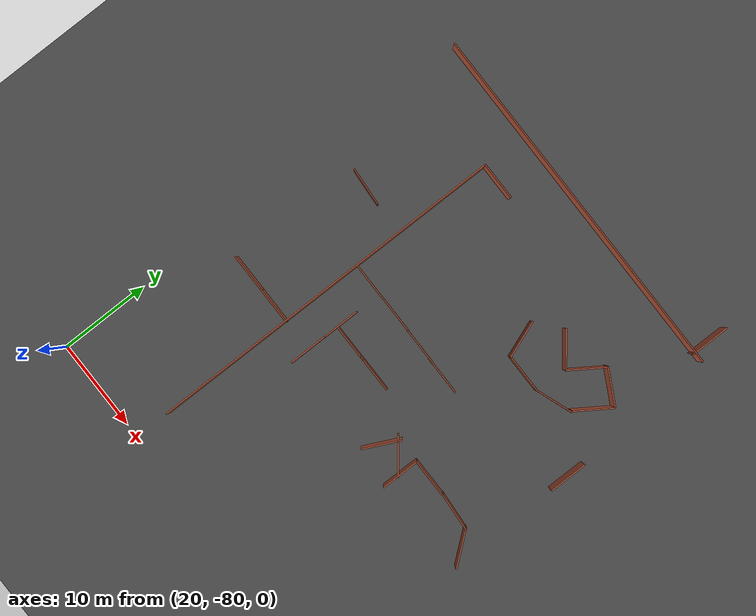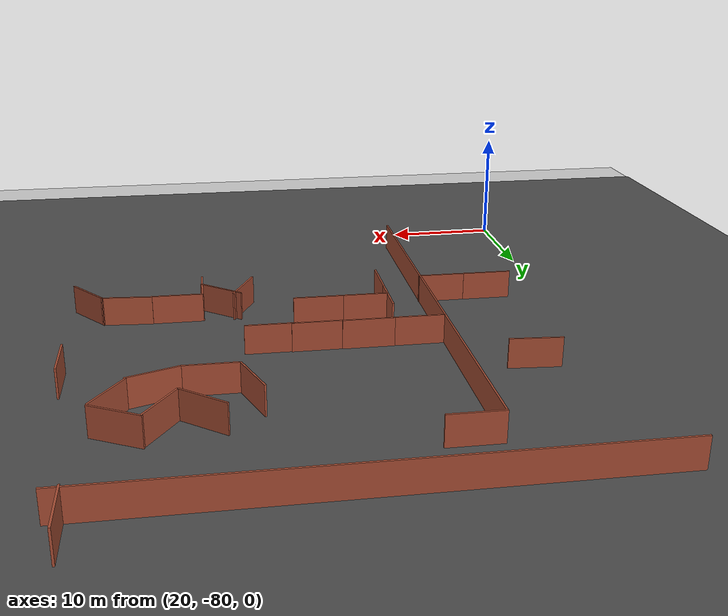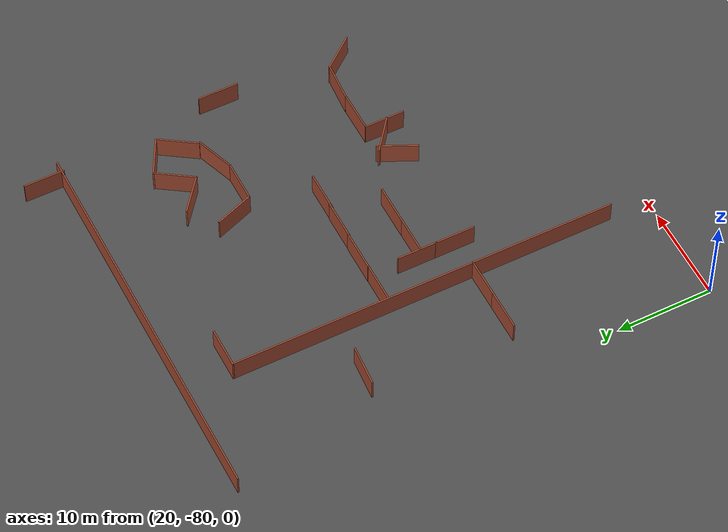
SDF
<sdf version="1.6">
 <world name="default">
  <model name="ground_plane">
   <static>1</static>
   <link name="link">
    <collision name="collision">
     <geometry><plane><normal>0 0 1</normal><size>200 200</size></plane></geometry>
     <surface><friction><ode><mu>100</mu><mu2>50</mu2></ode></friction></surface>
    </collision>
    <visual name="visual">
     <cast_shadows>0</cast_shadows>
     <geometry><plane><normal>0 0 1</normal><size>200 200</size></plane></geometry>
     <material>
      <script><uri>file://media/materials/scripts/gazebo.material</uri><name>Gazebo/Grey</name></script>
     </material>
    </visual>
   </link>
  </model>
  <model name="asphalt_plane">
   <static>1</static>
   <link name="link">
    <collision name="collision"><geometry><box><size>200 200 0.1</size></box></geometry></collision>
    <visual name="visual">
     <cast_shadows>0</cast_shadows>
     <geometry><box><size>200 200 0.1</size></box></geometry>
     <material>
      <script>
       <uri>model://asphalt_plane/materials/scripts</uri>
       <uri>model://asphalt_plane/materials/textures</uri>
       <name>vrc/asphalt</name>
      </script>
     </material>
    </visual>
   </link>
  </model>
  <model name="brick_longwall_clone">
   <pose>40.5339 -30.0862 0 0 -0 0</pose>
   <link name="Wall_0">
    <collision name="Wall_0_Collision">
     <geometry><box><size>40.5 0.15 2.5</size></box></geometry>
     <pose>0 0 1.25 0 -0 0</pose>
    </collision>
    <visual name="Wall_0_Visual">
     <pose>0 0 1.25 0 -0 0</pose>
     <geometry><box><size>40.5 0.15 2.5</size></box></geometry>
     <material>
      <script><uri>file://media/materials/scripts/gazebo.material</uri><name>Gazebo/Bricks</name></script>
      <ambient>1 1 1 1</ambient>
     </material>
    </visual>
    <pose>1e-06 0 0 0 -0 0</pose>
   </link>
   <static>1</static>
  </model>
  <model name="brick_worlds_2">
   <pose>57.0992 -38.867 0 0 -0 1.08023</pose>
   <link name="Wall_0">
    <collision name="Wall_0_Collision">
     <geometry><box><size>4.25 0.15 2.5</size></box></geometry>
     <pose>0 0 1.25 0 -0 0</pose>
    </collision>
    <visual name="Wall_0_Visual">
     <pose>0 0 1.25 0 -0 0</pose>
     <geometry><box><size>4.25 0.15 2.5</size></box></geometry>
     <material>
      <script><uri>file://media/materials/scripts/gazebo.material</uri><name>Gazebo/Bricks</name></script>
      <ambient>1 1 1 1</ambient>
     </material>
    </visual>
    <pose>0 -0 0 0 -0 1.5708</pose>
   </link>
   <static>1</static>
  </model>
  <model name="brick_worlds_0_clone">
   <pose>57.3372 -59.0075 0 0 -0 1.49697</pose>
   <link name="Wall_0">
    <collision name="Wall_0_Collision">
     <geometry><box><size>4.25 0.15 2.5</size></box></geometry>
     <pose>0 0 1.25 0 -0 0</pose>
    </collision>
    <visual name="Wall_0_Visual">
     <pose>0 0 1.25 0 -0 0</pose>
     <geometry><box><size>4.25 0.15 2.5</size></box></geometry>
     <material>
      <script><uri>file://media/materials/scripts/gazebo.material</uri><name>Gazebo/Bricks</name></script>
      <ambient>1 1 1 1</ambient>
     </material>
    </visual>
    <pose>0 -0 0 0 -0 1.5708</pose>
   </link>
   <static>1</static>
  </model>
  <model name="brick_worlds_2_clone">
   <pose>60.6055 -60.7291 0 0 -0 0.67691</pose>
   <link name="Wall_0">
    <collision name="Wall_0_Collision">
     <geometry><box><size>4.25 0.15 2.5</size></box></geometry>
     <pose>0 0 1.25 0 -0 0</pose>
    </collision>
    <visual name="Wall_0_Visual">
     <pose>0 0 1.25 0 -0 0</pose>
     <geometry><box><size>4.25 0.15 2.5</size></box></geometry>
     <material>
      <script><uri>file://media/materials/scripts/gazebo.material</uri><name>Gazebo/Bricks</name></script>
      <ambient>1 1 1 1</ambient>
     </material>
    </visual>
    <pose>0 -0 0 0 -0 1.5708</pose>
   </link>
   <static>1</static>
  </model>
  <model name="brick_worlds_1_clone_0">
   <pose>61.6134 -47.8914 0 0 -0 0</pose>
   <link name="Wall_0">
    <collision name="Wall_0_Collision">
     <geometry><box><size>4.25 0.15 2.5</size></box></geometry>
     <pose>0 0 1.25 0 -0 0</pose>
    </collision>
    <visual name="Wall_0_Visual">
     <pose>0 0 1.25 0 -0 0</pose>
     <geometry><box><size>4.25 0.15 2.5</size></box></geometry>
     <material>
      <script><uri>file://media/materials/scripts/gazebo.material</uri><name>Gazebo/Bricks</name></script>
      <ambient>1 1 1 1</ambient>
     </material>
    </visual>
    <pose>0 -0 0 0 -0 1.5708</pose>
   </link>
   <static>1</static>
  </model>
  <model name="brick_worlds_1_clone_0_clone_clone_0_clone_clone_0">
   <pose>53.1055 -58.8873 0 0 0 -1.57092</pose>
   <link name="Wall_0">
    <collision name="Wall_0_Collision">
     <geometry><box><size>4.25 0.15 2.5</size></box></geometry>
     <pose>0 0 1.25 0 -0 0</pose>
    </collision>
    <visual name="Wall_0_Visual">
     <pose>0 0 1.25 0 -0 0</pose>
     <geometry><box><size>4.25 0.15 2.5</size></box></geometry>
     <material>
      <script><uri>file://media/materials/scripts/gazebo.material</uri><name>Gazebo/Bricks</name></script>
      <ambient>1 1 1 1</ambient>
     </material>
    </visual>
    <pose>0 -0 0 0 -0 1.5708</pose>
   </link>
   <static>1</static>
  </model>
  <model name="brick_worlds_1_clone_1_clone_7_clone_clone">
   <pose>54.1633 -39.674 0 0 0 -0.589381</pose>
   <link name="Wall_0">
    <collision name="Wall_0_Collision">
     <geometry><box><size>4.25 0.15 2.5</size></box></geometry>
     <pose>0 0 1.25 0 -0 0</pose>
    </collision>
    <visual name="Wall_0_Visual">
     <pose>0 0 1.25 0 -0 0</pose>
     <geometry><box><size>4.25 0.15 2.5</size></box></geometry>
     <material>
      <script><uri>file://media/materials/scripts/gazebo.material</uri><name>Gazebo/Bricks</name></script>
      <ambient>1 1 1 1</ambient>
     </material>
    </visual>
    <pose>0 -0 0 0 -0 1.5708</pose>
   </link>
   <static>1</static>
  </model>
  <model name="brick_worlds_1_clone_1_clone_7_clone_clone_clone">
   <pose>57.7678 -41.7145 0 0 0 -0.589381</pose>
   <link name="Wall_0">
    <collision name="Wall_0_Collision">
     <geometry><box><size>4.25 0.15 2.5</size></box></geometry>
     <pose>0 0 1.25 0 -0 0</pose>
    </collision>
    <visual name="Wall_0_Visual">
     <pose>0 0 1.25 0 -0 0</pose>
     <geometry><box><size>4.25 0.15 2.5</size></box></geometry>
     <material>
      <script><uri>file://media/materials/scripts/gazebo.material</uri><name>Gazebo/Bricks</name></script>
      <ambient>1 1 1 1</ambient>
     </material>
    </visual>
    <pose>0 -0 0 0 -0 1.5708</pose>
   </link>
   <static>1</static>
  </model>
  <model name="brick_worlds_1_clone_0_clone_clone_0_clone_clone_0_clone_clone">
   <pose>47.8022 -43.0147 0 0 0 -2.78777</pose>
   <link name="Wall_0">
    <collision name="Wall_0_Collision">
     <geometry><box><size>4.25 0.15 2.5</size></box></geometry>
     <pose>0 0 1.25 0 -0 0</pose>
    </collision>
    <visual name="Wall_0_Visual">
     <pose>0 0 1.25 0 -0 0</pose>
     <geometry><box><size>4.25 0.15 2.5</size></box></geometry>
     <material>
      <script><uri>file://media/materials/scripts/gazebo.material</uri><name>Gazebo/Bricks</name></script>
      <ambient>1 1 1 1</ambient>
     </material>
    </visual>
    <pose>0 -0 0 0 -0 1.5708</pose>
   </link>
   <static>1</static>
  </model>
  <model name="brick_worlds_1_clone_0_clone_clone_0_clone_clone_0_clone_clone_0">
   <pose>54.7413 -44.255 0 0 0 -1.22347</pose>
   <link name="Wall_0">
    <collision name="Wall_0_Collision">
     <geometry><box><size>4.25 0.15 2.5</size></box></geometry>
     <pose>0 0 1.25 0 -0 0</pose>
    </collision>
    <visual name="Wall_0_Visual">
     <pose>0 0 1.25 0 -0 0</pose>
     <geometry><box><size>4.25 0.15 2.5</size></box></geometry>
     <material>
      <script><uri>file://media/materials/scripts/gazebo.material</uri><name>Gazebo/Bricks</name></script>
      <ambient>1 1 1 1</ambient>
     </material>
    </visual>
    <pose>0 -0 0 0 -0 1.5708</pose>
   </link>
   <static>1</static>
  </model>
  <model name="brick_worlds_1_clone_0_clone_clone_0_clone_clone_0_clone_clone_clone">
   <pose>50.6997 -44.9664 0 0 0 -1.57092</pose>
   <link name="Wall_0">
    <collision name="Wall_0_Collision">
     <geometry><box><size>4.25 0.15 2.5</size></box></geometry>
     <pose>0 0 1.25 0 -0 0</pose>
    </collision>
    <visual name="Wall_0_Visual">
     <pose>0 0 1.25 0 -0 0</pose>
     <geometry><box><size>4.25 0.15 2.5</size></box></geometry>
     <material>
      <script><uri>file://media/materials/scripts/gazebo.material</uri><name>Gazebo/Bricks</name></script>
      <ambient>1 1 1 1</ambient>
     </material>
    </visual>
    <pose>0 -0 0 0 -0 1.5708</pose>
   </link>
   <static>1</static>
  </model>
  <model name="brick_worlds_1_clone_1_clone_7_clone_clone_0">
   <pose>51.3459 -40.1271 0 0 -0 0.90029</pose>
   <link name="Wall_0">
    <collision name="Wall_0_Collision">
     <geometry><box><size>4.25 0.15 2.5</size></box></geometry>
     <pose>0 0 1.25 0 -0 0</pose>
    </collision>
    <visual name="Wall_0_Visual">
     <pose>0 0 1.25 0 -0 0</pose>
     <geometry><box><size>4.25 0.15 2.5</size></box></geometry>
     <material>
      <script><uri>file://media/materials/scripts/gazebo.material</uri><name>Gazebo/Bricks</name></script>
      <ambient>1 1 1 1</ambient>
     </material>
    </visual>
    <pose>0 -0 0 0 -0 1.5708</pose>
   </link>
   <static>1</static>
  </model>
  <model name="brick_longwall_0_clone_clone">
   <pose>31.77 -55.4466 0 0 0 -1.57092</pose>
   <link name="Wall_0">
    <collision name="Wall_0_Collision">
     <geometry><box><size>40.5 0.15 2.5</size></box></geometry>
     <pose>0 0 1.25 0 -0 0</pose>
    </collision>
    <visual name="Wall_0_Visual">
     <pose>0 0 1.25 0 -0 0</pose>
     <geometry><box><size>40.5 0.15 2.5</size></box></geometry>
     <material>
      <script><uri>file://media/materials/scripts/gazebo.material</uri><name>Gazebo/Bricks</name></script>
      <ambient>1 1 1 1</ambient>
     </material>
    </visual>
    <pose>1e-06 0 0 0 -0 0</pose>
   </link>
   <static>1</static>
  </model>
  <model name="brick_worlds_1_clone_clone_0">
   <pose>59.5845 -28.2096 0 0 -0 0</pose>
   <link name="Wall_0">
    <collision name="Wall_0_Collision">
     <geometry><box><size>4.25 0.15 2.5</size></box></geometry>
     <pose>0 0 1.25 0 -0 0</pose>
    </collision>
    <visual name="Wall_0_Visual">
     <pose>0 0 1.25 0 -0 0</pose>
     <geometry><box><size>4.25 0.15 2.5</size></box></geometry>
     <material>
      <script><uri>file://media/materials/scripts/gazebo.material</uri><name>Gazebo/Bricks</name></script>
      <ambient>1 1 1 1</ambient>
     </material>
    </visual>
    <pose>0 -0 0 0 -0 1.5708</pose>
   </link>
   <static>1</static>
  </model>
  <model name="brick_worlds_1_clone_1_clone_8_clone">
   <pose>50.9946 -60.9535 0 0 -0 0</pose>
   <link name="Wall_0">
    <collision name="Wall_0_Collision">
     <geometry><box><size>4.25 0.15 2.5</size></box></geometry>
     <pose>0 0 1.25 0 -0 0</pose>
    </collision>
    <visual name="Wall_0_Visual">
     <pose>0 0 1.25 0 -0 0</pose>
     <geometry><box><size>4.25 0.15 2.5</size></box></geometry>
     <material>
      <script><uri>file://media/materials/scripts/gazebo.material</uri><name>Gazebo/Bricks</name></script>
      <ambient>1 1 1 1</ambient>
     </material>
    </visual>
    <pose>0 -0 0 0 -0 1.5708</pose>
   </link>
   <static>1</static>
  </model>
  <model name="brick_worlds_1_clone_0_clone_clone_0_clone_2_clone_0_clone_1">
   <pose>33.8189 -35.1168 0 0 0 -1.57092</pose>
   <link name="Wall_0">
    <collision name="Wall_0_Collision">
     <geometry><box><size>4.25 0.15 2.5</size></box></geometry>
     <pose>0 0 1.25 0 -0 0</pose>
    </collision>
    <visual name="Wall_0_Visual">
     <pose>0 0 1.25 0 -0 0</pose>
     <geometry><box><size>4.25 0.15 2.5</size></box></geometry>
     <material>
      <script><uri>file://media/materials/scripts/gazebo.material</uri><name>Gazebo/Bricks</name></script>
      <ambient>1 1 1 1</ambient>
     </material>
    </visual>
    <pose>0 -0 0 0 -0 1.5708</pose>
   </link>
   <static>1</static>
  </model>
  <model name="brick_worlds_1_clone_0_clone_clone_0_clone_clone_clone_4">
   <pose>29.7635 -60.5389 0 0 0 -1.57092</pose>
   <link name="Wall_0">
    <collision name="Wall_0_Collision">
     <geometry><box><size>4.25 0.15 2.5</size></box></geometry>
     <pose>0 0 1.25 0 -0 0</pose>
    </collision>
    <visual name="Wall_0_Visual">
     <pose>0 0 1.25 0 -0 0</pose>
     <geometry><box><size>4.25 0.15 2.5</size></box></geometry>
     <material>
      <script><uri>file://media/materials/scripts/gazebo.material</uri><name>Gazebo/Bricks</name></script>
      <ambient>1 1 1 1</ambient>
     </material>
    </visual>
    <pose>0 -0 0 0 -0 1.5708</pose>
   </link>
   <static>1</static>
  </model>
  <model name="brick_worlds_1_clone_0_clone_clone_0_clone_clone_clone_5">
   <pose>25.6804 -60.5311 0 0 0 -1.57092</pose>
   <link name="Wall_0">
    <collision name="Wall_0_Collision">
     <geometry><box><size>4.25 0.15 2.5</size></box></geometry>
     <pose>0 0 1.25 0 -0 0</pose>
    </collision>
    <visual name="Wall_0_Visual">
     <pose>0 0 1.25 0 -0 0</pose>
     <geometry><box><size>4.25 0.15 2.5</size></box></geometry>
     <material>
      <script><uri>file://media/materials/scripts/gazebo.material</uri><name>Gazebo/Bricks</name></script>
      <ambient>1 1 1 1</ambient>
     </material>
    </visual>
    <pose>0 -0 0 0 -0 1.5708</pose>
   </link>
   <static>1</static>
  </model>
  <model name="brick_worlds_0_clone_clone_1_clone">
   <pose>26.0666 -45.8925 0 0 -0 1.49697</pose>
   <link name="Wall_0">
    <collision name="Wall_0_Collision">
     <geometry><box><size>4.25 0.15 2.5</size></box></geometry>
     <pose>0 0 1.25 0 -0 0</pose>
    </collision>
    <visual name="Wall_0_Visual">
     <pose>0 0 1.25 0 -0 0</pose>
     <geometry><box><size>4.25 0.15 2.5</size></box></geometry>
     <material>
      <script><uri>file://media/materials/scripts/gazebo.material</uri><name>Gazebo/Bricks</name></script>
      <ambient>1 1 1 1</ambient>
     </material>
    </visual>
    <pose>0 -0 0 0 -0 1.5708</pose>
   </link>
   <static>1</static>
  </model>
  <model name="brick_worlds_1_clone_1_clone_clone_0">
   <pose>47.4769 -60.5875 0 0 0 -0.44875</pose>
   <link name="Wall_0">
    <collision name="Wall_0_Collision">
     <geometry><box><size>4.25 0.15 2.5</size></box></geometry>
     <pose>0 0 1.25 0 -0 0</pose>
    </collision>
    <visual name="Wall_0_Visual">
     <pose>0 0 1.25 0 -0 0</pose>
     <geometry><box><size>4.25 0.15 2.5</size></box></geometry>
     <material>
      <script><uri>file://media/materials/scripts/gazebo.material</uri><name>Gazebo/Bricks</name></script>
      <ambient>1 1 1 1</ambient>
     </material>
    </visual>
    <pose>0 -0 0 0 -0 1.5708</pose>
   </link>
   <static>1</static>
  </model>
  <model name="brick_worlds_0_clone_clone_clone_clone">
   <pose>49.4283 -60.0047 0 0 -0 0.90566</pose>
   <link name="Wall_0">
    <collision name="Wall_0_Collision">
     <geometry><box><size>4.25 0.15 2.5</size></box></geometry>
     <pose>0 0 1.25 0 -0 0</pose>
    </collision>
    <visual name="Wall_0_Visual">
     <pose>0 0 1.25 0 -0 0</pose>
     <geometry><box><size>4.25 0.15 2.5</size></box></geometry>
     <material>
      <script><uri>file://media/materials/scripts/gazebo.material</uri><name>Gazebo/Bricks</name></script>
      <ambient>1 1 1 1</ambient>
     </material>
    </visual>
    <pose>0 -0 0 0 -0 1.5708</pose>
   </link>
   <static>1</static>
  </model>
  <model name="brick_worlds_1_clone_clone_4">
   <pose>35.442 -60.5236 0 0 -0 0</pose>
   <link name="Wall_0">
    <collision name="Wall_0_Collision">
     <geometry><box><size>4.25 0.15 2.5</size></box></geometry>
     <pose>0 0 1.25 0 -0 0</pose>
    </collision>
    <visual name="Wall_0_Visual">
     <pose>0 0 1.25 0 -0 0</pose>
     <geometry><box><size>4.25 0.15 2.5</size></box></geometry>
     <material>
      <script><uri>file://media/materials/scripts/gazebo.material</uri><name>Gazebo/Bricks</name></script>
      <ambient>1 1 1 1</ambient>
     </material>
    </visual>
    <pose>0 -0 0 0 -0 1.5708</pose>
   </link>
   <static>1</static>
  </model>
  <model name="brick_worlds_1_clone_clone_5">
   <pose>35.4474 -56.4939 0 0 -0 0</pose>
   <link name="Wall_0">
    <collision name="Wall_0_Collision">
     <geometry><box><size>4.25 0.15 2.5</size></box></geometry>
     <pose>0 0 1.25 0 -0 0</pose>
    </collision>
    <visual name="Wall_0_Visual">
     <pose>0 0 1.25 0 -0 0</pose>
     <geometry><box><size>4.25 0.15 2.5</size></box></geometry>
     <material>
      <script><uri>file://media/materials/scripts/gazebo.material</uri><name>Gazebo/Bricks</name></script>
      <ambient>1 1 1 1</ambient>
     </material>
    </visual>
    <pose>0 -0 0 0 -0 1.5708</pose>
   </link>
   <static>1</static>
  </model>
  <model name="brick_worlds_1_clone_0_clone_clone_0_clone_clone_0_clone">
   <pose>33.9168 -51.4614 0 0 0 -1.57092</pose>
   <link name="Wall_0">
    <collision name="Wall_0_Collision">
     <geometry><box><size>4.25 0.15 2.5</size></box></geometry>
     <pose>0 0 1.25 0 -0 0</pose>
    </collision>
    <visual name="Wall_0_Visual">
     <pose>0 0 1.25 0 -0 0</pose>
     <geometry><box><size>4.25 0.15 2.5</size></box></geometry>
     <material>
      <script><uri>file://media/materials/scripts/gazebo.material</uri><name>Gazebo/Bricks</name></script>
      <ambient>1 1 1 1</ambient>
     </material>
    </visual>
    <pose>0 -0 0 0 -0 1.5708</pose>
   </link>
   <static>1</static>
  </model>
  <model name="brick_worlds_1_clone_0_clone_clone_0_clone_clone_0_clone_0">
   <pose>38.0124 -51.4449 0 0 0 -1.57092</pose>
   <link name="Wall_0">
    <collision name="Wall_0_Collision">
     <geometry><box><size>4.25 0.15 2.5</size></box></geometry>
     <pose>0 0 1.25 0 -0 0</pose>
    </collision>
    <visual name="Wall_0_Visual">
     <pose>0 0 1.25 0 -0 0</pose>
     <geometry><box><size>4.25 0.15 2.5</size></box></geometry>
     <material>
      <script><uri>file://media/materials/scripts/gazebo.material</uri><name>Gazebo/Bricks</name></script>
      <ambient>1 1 1 1</ambient>
     </material>
    </visual>
    <pose>0 -0 0 0 -0 1.5708</pose>
   </link>
   <static>1</static>
  </model>
  <model name="brick_worlds_1_clone_0_clone_clone_0_clone_clone_0_clone_1">
   <pose>42.0568 -51.4873 0 0 0 -1.57092</pose>
   <link name="Wall_0">
    <collision name="Wall_0_Collision">
     <geometry><box><size>4.25 0.15 2.5</size></box></geometry>
     <pose>0 0 1.25 0 -0 0</pose>
    </collision>
    <visual name="Wall_0_Visual">
     <pose>0 0 1.25 0 -0 0</pose>
     <geometry><box><size>4.25 0.15 2.5</size></box></geometry>
     <material>
      <script><uri>file://media/materials/scripts/gazebo.material</uri><name>Gazebo/Bricks</name></script>
      <ambient>1 1 1 1</ambient>
     </material>
    </visual>
    <pose>0 -0 0 0 -0 1.5708</pose>
   </link>
   <static>1</static>
  </model>
  <model name="brick_worlds_1_clone_0_clone_clone_0_clone_clone_0_clone_2">
   <pose>45.8006 -51.541 0 0 0 -1.57092</pose>
   <link name="Wall_0">
    <collision name="Wall_0_Collision">
     <geometry><box><size>4.25 0.15 2.5</size></box></geometry>
     <pose>0 0 1.25 0 -0 0</pose>
    </collision>
    <visual name="Wall_0_Visual">
     <pose>0 0 1.25 0 -0 0</pose>
     <geometry><box><size>4.25 0.15 2.5</size></box></geometry>
     <material>
      <script><uri>file://media/materials/scripts/gazebo.material</uri><name>Gazebo/Bricks</name></script>
      <ambient>1 1 1 1</ambient>
     </material>
    </visual>
    <pose>0 -0 0 0 -0 1.5708</pose>
   </link>
   <static>1</static>
  </model>
  <model name="brick_worlds_1_clone_0_clone_clone_0_clone_clone_0_clone_3">
   <pose>37.5549 -56.8155 0 0 0 -1.57092</pose>
   <link name="Wall_0">
    <collision name="Wall_0_Collision">
     <geometry><box><size>4.25 0.15 2.5</size></box></geometry>
     <pose>0 0 1.25 0 -0 0</pose>
    </collision>
    <visual name="Wall_0_Visual">
     <pose>0 0 1.25 0 -0 0</pose>
     <geometry><box><size>4.25 0.15 2.5</size></box></geometry>
     <material>
      <script><uri>file://media/materials/scripts/gazebo.material</uri><name>Gazebo/Bricks</name></script>
      <ambient>1 1 1 1</ambient>
     </material>
    </visual>
    <pose>0 -0 0 0 -0 1.5708</pose>
   </link>
   <static>1</static>
  </model>
  <model name="brick_worlds_1_clone_0_clone_clone_0_clone_clone_0_clone_4">
   <pose>41.3635 -56.8009 0 0 0 -1.57092</pose>
   <link name="Wall_0">
    <collision name="Wall_0_Collision">
     <geometry><box><size>4.25 0.15 2.5</size></box></geometry>
     <pose>0 0 1.25 0 -0 0</pose>
    </collision>
    <visual name="Wall_0_Visual">
     <pose>0 0 1.25 0 -0 0</pose>
     <geometry><box><size>4.25 0.15 2.5</size></box></geometry>
     <material>
      <script><uri>file://media/materials/scripts/gazebo.material</uri><name>Gazebo/Bricks</name></script>
      <ambient>1 1 1 1</ambient>
     </material>
    </visual>
    <pose>0 -0 0 0 -0 1.5708</pose>
   </link>
   <static>1</static>
  </model>
 </world>
</sdf>
